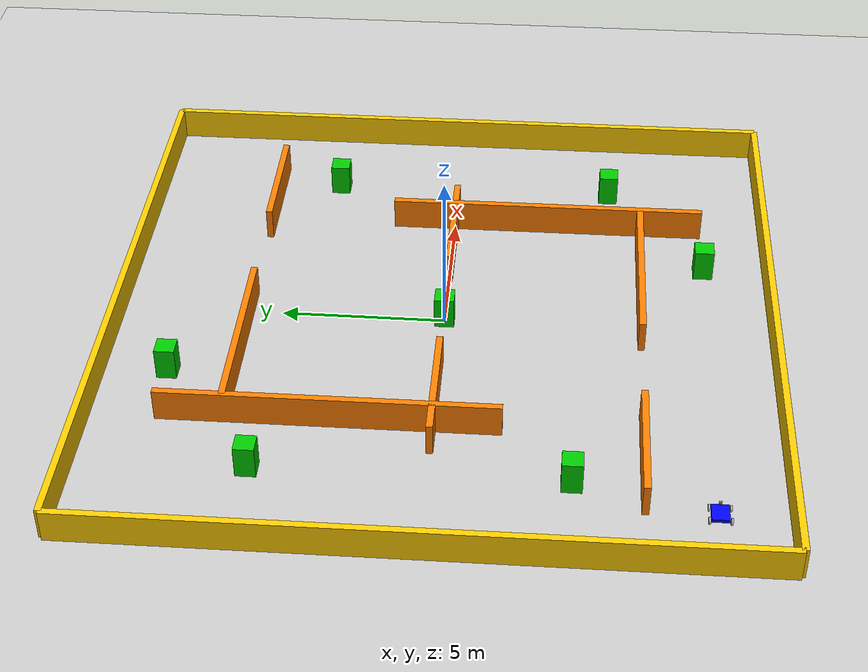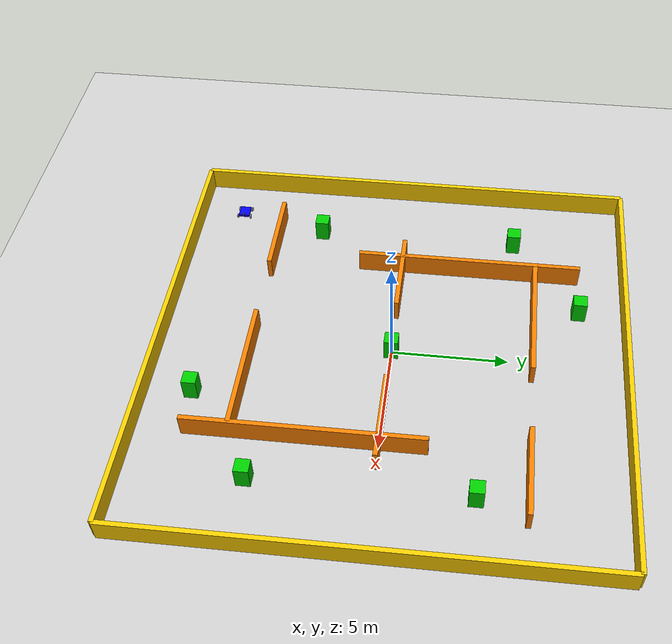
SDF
<?xml version="1.0" ?>
<sdf version="1.7">
    <world name="test_world">

        <include>
            <uri>https://fuel.gazebosim.org/1.0/OpenRobotics/models/Sun</uri>
        </include>

        <include>
            <uri>https://fuel.gazebosim.org/1.0/OpenRobotics/models/Ground Plane</uri>
        </include>

        <include>
            <uri>/workspace/gazebo_projects/models/simple_bot</uri>
            <pose>-8 -8 0.05 0 0 0</pose>
        </include>

        <physics name="1ms" type="ignored">
            <max_step_size>0.001</max_step_size>
            <real_time_factor>1.0</real_time_factor>
        </physics>

        <!-- OUTER WALLS 20x20 (yellow)  -->
        <model name="wall_north">
            <static>true</static>
            <pose>10 0 0.5 0 0 0</pose>
            <link name="link">
                <collision name="collision">
                    <geometry>
                        <box>
                            <size>0.2 20 1</size>
                        </box>
                    </geometry>
                </collision>
                <visual name="visual">
                    <geometry>
                        <box>
                            <size>0.2 20 1</size>
                        </box>
                    </geometry>
                    <material>
                        <ambient>1 0.8 0 1</ambient>
                        <diffuse>1 0.8 0 1</diffuse>
                    </material>
                </visual>
            </link>
        </model>

        <model name="wall_south">
            <static>true</static>
            <pose>-10 0 0.5 0 0 0</pose>
            <link name="link">
                <collision name="collision">
                    <geometry>
                        <box>
                            <size>0.2 20 1</size>
                        </box>
                    </geometry>
                </collision>
                <visual name="visual">
                    <geometry>
                        <box>
                            <size>0.2 20 1</size>
                        </box>
                    </geometry>
                    <material>
                        <ambient>1 0.8 0 1</ambient>
                        <diffuse>1 0.8 0 1</diffuse>
                    </material>
                </visual>
            </link>
        </model>

        <model name="wall_east">
            <static>true</static>
            <pose>0 10 0.5 0 0 0</pose>
            <link name="link">
                <collision name="collision">
                    <geometry>
                        <box>
                            <size>20 0.2 1</size>
                        </box>
                    </geometry>
                </collision>
                <visual name="visual">
                    <geometry>
                        <box>
                            <size>20 0.2 1</size>
                        </box>
                    </geometry>
                    <material>
                        <ambient>1 0.8 0 1</ambient>
                        <diffuse>1 0.8 0 1</diffuse>
                    </material>
                </visual>
            </link>
        </model>

        <model name="wall_west">
            <static>true</static>
            <pose>0 -10 0.5 0 0 0</pose>
            <link name="link">
                <collision name="collision">
                    <geometry>
                        <box>
                            <size>20 0.2 1</size>
                        </box>
                    </geometry>
                </collision>
                <visual name="visual">
                    <geometry>
                        <box>
                            <size>20 0.2 1</size>
                        </box>
                    </geometry>
                    <material>
                        <ambient>1 0.8 0 1</ambient>
                        <diffuse>1 0.8 0 1</diffuse>
                    </material>
                </visual>
            </link>
        </model>

        <!-- MAZE INNER WALLS (orange) -->

        <!-- Left vertical wall — gap at bottom -->
        <model name="maze_wall_1">
            <static>true</static>
            <pose>-5 3 0.5 0 0 0</pose>
            <link name="link">
                <collision name="collision">
                    <geometry>
                        <box>
                            <size>0.2 10 1</size>
                        </box>
                    </geometry>
                </collision>
                <visual name="visual">
                    <geometry>
                        <box>
                            <size>0.2 10 1</size>
                        </box>
                    </geometry>
                    <material>
                        <ambient>1 0.5 0 1</ambient>
                        <diffuse>1 0.5 0 1</diffuse>
                    </material>
                </visual>
            </link>
        </model>

        <!-- Right vertical wall — gap at top -->
        <model name="maze_wall_2">
            <static>true</static>
            <pose>5 -3 0.5 0 0 0</pose>
            <link name="link">
                <collision name="collision">
                    <geometry>
                        <box>
                            <size>0.2 10 1</size>
                        </box>
                    </geometry>
                </collision>
                <visual name="visual">
                    <geometry>
                        <box>
                            <size>0.2 10 1</size>
                        </box>
                    </geometry>
                    <material>
                        <ambient>1 0.5 0 1</ambient>
                        <diffuse>1 0.5 0 1</diffuse>
                    </material>
                </visual>
            </link>
        </model>

        <!-- Top horizontal wall — gap on right side -->
        <model name="maze_wall_3a">
            <static>true</static>
            <pose>-2 6 0.5 0 0 0</pose>
            <link name="link">
                <collision name="collision">
                    <geometry>
                        <box>
                            <size>6 0.2 1</size>
                        </box>
                    </geometry>
                </collision>
                <visual name="visual">
                    <geometry>
                        <box>
                            <size>6 0.2 1</size>
                        </box>
                    </geometry>
                    <material>
                        <ambient>1 0.5 0 1</ambient>
                        <diffuse>1 0.5 0 1</diffuse>
                    </material>
                </visual>
            </link>
        </model>

        <model name="maze_wall_3b">
            <static>true</static>
            <pose>6 6 0.5 0 0 0</pose>
            <link name="link">
                <collision name="collision">
                    <geometry>
                        <box>
                            <size>4 0.2 1</size>
                        </box>
                    </geometry>
                </collision>
                <visual name="visual">
                    <geometry>
                        <box>
                            <size>4 0.2 1</size>
                        </box>
                    </geometry>
                    <material>
                        <ambient>1 0.5 0 1</ambient>
                        <diffuse>1 0.5 0 1</diffuse>
                    </material>
                </visual>
            </link>
        </model>

        <!-- Bottom horizontal wall — gap on left side -->
        <model name="maze_wall_4a">
            <static>true</static>
            <pose>2 -6 0.5 0 0 0</pose>
            <link name="link">
                <collision name="collision">
                    <geometry>
                        <box>
                            <size>6 0.2 1</size>
                        </box>
                    </geometry>
                </collision>
                <visual name="visual">
                    <geometry>
                        <box>
                            <size>6 0.2 1</size>
                        </box>
                    </geometry>
                    <material>
                        <ambient>1 0.5 0 1</ambient>
                        <diffuse>1 0.5 0 1</diffuse>
                    </material>
                </visual>
            </link>
        </model>

        <model name="maze_wall_4b">
            <static>true</static>
            <pose>-6 -6 0.5 0 0 0</pose>
            <link name="link">
                <collision name="collision">
                    <geometry>
                        <box>
                            <size>4 0.2 1</size>
                        </box>
                    </geometry>
                </collision>
                <visual name="visual">
                    <geometry>
                        <box>
                            <size>4 0.2 1</size>
                        </box>
                    </geometry>
                    <material>
                        <ambient>1 0.5 0 1</ambient>
                        <diffuse>1 0.5 0 1</diffuse>
                    </material>
                </visual>
            </link>
        </model>

        <!-- Middle cross wall — horizontal, gap in centre -->
        <model name="maze_wall_5a">
            <static>true</static>
            <pose>-4 0 0.5 0 0 0</pose>
            <link name="link">
                <collision name="collision">
                    <geometry>
                        <box>
                            <size>4 0.2 1</size>
                        </box>
                    </geometry>
                </collision>
                <visual name="visual">
                    <geometry>
                        <box>
                            <size>4 0.2 1</size>
                        </box>
                    </geometry>
                    <material>
                        <ambient>1 0.5 0 1</ambient>
                        <diffuse>1 0.5 0 1</diffuse>
                    </material>
                </visual>
            </link>
        </model>

        <model name="maze_wall_5b">
            <static>true</static>
            <pose>4 0 0.5 0 0 0</pose>
            <link name="link">
                <collision name="collision">
                    <geometry>
                        <box>
                            <size>4 0.2 1</size>
                        </box>
                    </geometry>
                </collision>
                <visual name="visual">
                    <geometry>
                        <box>
                            <size>4 0.2 1</size>
                        </box>
                    </geometry>
                    <material>
                        <ambient>1 0.5 0 1</ambient>
                        <diffuse>1 0.5 0 1</diffuse>
                    </material>
                </visual>
            </link>
        </model>

        <!-- PILLARS (green) -->
        <model name="pillar_1">
            <static>true</static>
            <pose>0 0 0.5 0 0 0</pose>
            <link name="link">
                <collision name="collision">
                    <geometry>
                        <box>
                            <size>0.6 0.6 1</size>
                        </box>
                    </geometry>
                </collision>
                <visual name="visual">
                    <geometry>
                        <box>
                            <size>0.6 0.6 1</size>
                        </box>
                    </geometry>
                    <material>
                        <ambient>0 0.8 0 1</ambient>
                        <diffuse>0 0.8 0 1</diffuse>
                    </material>
                </visual>
            </link>
        </model>

        <model name="pillar_2">
            <static>true</static>
            <pose>7 4 0.5 0 0 0</pose>
            <link name="link">
                <collision name="collision">
                    <geometry>
                        <box>
                            <size>0.6 0.6 1</size>
                        </box>
                    </geometry>
                </collision>
                <visual name="visual">
                    <geometry>
                        <box>
                            <size>0.6 0.6 1</size>
                        </box>
                    </geometry>
                    <material>
                        <ambient>0 0.8 0 1</ambient>
                        <diffuse>0 0.8 0 1</diffuse>
                    </material>
                </visual>
            </link>
        </model>

        <model name="pillar_3">
            <static>true</static>
            <pose>-7 -4 0.5 0 0 0</pose>
            <link name="link">
                <collision name="collision">
                    <geometry>
                        <box>
                            <size>0.6 0.6 1</size>
                        </box>
                    </geometry>
                </collision>
                <visual name="visual">
                    <geometry>
                        <box>
                            <size>0.6 0.6 1</size>
                        </box>
                    </geometry>
                    <material>
                        <ambient>0 0.8 0 1</ambient>
                        <diffuse>0 0.8 0 1</diffuse>
                    </material>
                </visual>
            </link>
        </model>

        <model name="pillar_4">
            <static>true</static>
            <pose>-7 5 0.5 0 0 0</pose>
            <link name="link">
                <collision name="collision">
                    <geometry>
                        <box>
                            <size>0.6 0.6 1</size>
                        </box>
                    </geometry>
                </collision>
                <visual name="visual">
                    <geometry>
                        <box>
                            <size>0.6 0.6 1</size>
                        </box>
                    </geometry>
                    <material>
                        <ambient>0 0.8 0 1</ambient>
                        <diffuse>0 0.8 0 1</diffuse>
                    </material>
                </visual>
            </link>
        </model>

        <model name="pillar_5">
            <static>true</static>
            <pose>7 -5 0.5 0 0 0</pose>
            <link name="link">
                <collision name="collision">
                    <geometry>
                        <box>
                            <size>0.6 0.6 1</size>
                        </box>
                    </geometry>
                </collision>
                <visual name="visual">
                    <geometry>
                        <box>
                            <size>0.6 0.6 1</size>
                        </box>
                    </geometry>
                    <material>
                        <ambient>0 0.8 0 1</ambient>
                        <diffuse>0 0.8 0 1</diffuse>
                    </material>
                </visual>
            </link>
        </model>

        <model name="pillar_6">
            <static>true</static>
            <pose>3 -8 0.5 0 0 0</pose>
            <link name="link">
                <collision name="collision">
                    <geometry>
                        <box>
                            <size>0.6 0.6 1</size>
                        </box>
                    </geometry>
                </collision>
                <visual name="visual">
                    <geometry>
                        <box>
                            <size>0.6 0.6 1</size>
                        </box>
                    </geometry>
                    <material>
                        <ambient>0 0.8 0 1</ambient>
                        <diffuse>0 0.8 0 1</diffuse>
                    </material>
                </visual>
            </link>
        </model>

        <model name="pillar_7">
            <static>true</static>
            <pose>-3 8 0.5 0 0 0</pose>
            <link name="link">
                <collision name="collision">
                    <geometry>
                        <box>
                            <size>0.6 0.6 1</size>
                        </box>
                    </geometry>
                </collision>
                <visual name="visual">
                    <geometry>
                        <box>
                            <size>0.6 0.6 1</size>
                        </box>
                    </geometry>
                    <material>
                        <ambient>0 0.8 0 1</ambient>
                        <diffuse>0 0.8 0 1</diffuse>
                    </material>
                </visual>
            </link>
        </model>

    </world>
</sdf>

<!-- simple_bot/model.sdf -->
<sdf version="1.7">
    <model name="square_bot">
        <pose>0 0 0 0 0 0</pose>

        <link name="chassis">
            <pose relative_to='__model__'>0 0 0.15 0 0 0</pose>
            <inertial>
                <mass>1.5</mass>
                <inertia>
                    <ixx>0.1</ixx>
                    <iyy>0.1</iyy>
                    <izz>0.1</izz>
                </inertia>
            </inertial>
            <visual name="visual">
                <geometry>
                    <box>
                        <size>0.6 0.5 0.1</size>
                    </box>
                </geometry>
                <material>
                    <ambient>0 0 1 1</ambient>
                    <diffuse>0 0 1 1</diffuse>
                </material>
            </visual>
            <collision name="collision">
                <geometry>
                    <box>
                        <size>0.6 0.5 0.1</size>
                    </box>
                </geometry>
            </collision>
        </link>

        <link name="front_lidar_link">
            <pose relative_to="chassis">0.3 0 0.08 0 0 0</pose>
            <inertial>
                <mass>0.1</mass>
                <inertia>
                    <ixx>0.001</ixx>
                    <iyy>0.001</iyy>
                    <izz>0.001</izz>
                </inertia>
            </inertial>
            <visual name="visual">
                <geometry>
                    <cylinder>
                        <radius>0.04</radius>
                        <length>0.06</length>
                    </cylinder>
                </geometry>
                <material>
                    <ambient>0.2 0.2 0.2 1</ambient>
                    <diffuse>0.2 0.2 0.2 1</diffuse>
                </material>
            </visual>
            <collision name="collision">
                <geometry>
                    <cylinder>
                        <radius>0.04</radius>
                        <length>0.06</length>
                    </cylinder>
                </geometry>
            </collision>
            <sensor name="front_lidar" type="gpu_lidar">
                <pose>0 0 0 0 0 0</pose>
                <topic>front_lidar/scan</topic>
                <update_rate>10</update_rate>
                <lidar>
                    <scan>
                        <horizontal>
                            <samples>360</samples>
                            <resolution>1</resolution>
                            <min_angle>-1.5707963</min_angle>
                            <max_angle>1.5707963</max_angle>
                        </horizontal>
                    </scan>
                    <range>
                        <min>0.1</min>
                        <max>10.0</max>
                        <resolution>0.01</resolution>
                    </range>
                </lidar>
                <visualize>true</visualize>
            </sensor>
        </link>

        <joint name="front_lidar_joint" type="fixed">
            <parent>chassis</parent>
            <child>front_lidar_link</child>
        </joint>

        <link name="camera_pan_link">
            <pose relative_to="chassis">0.28 0 0.1 0 0 0</pose>
            <inertial>
                <mass>0.1</mass>
                <inertia>
                    <ixx>0.0001</ixx>
                    <iyy>0.0001</iyy>
                    <izz>0.0001</izz>
                </inertia>
            </inertial>
            <visual name="visual">
                <geometry>
                    <cylinder>
                        <radius>0.03</radius>
                        <length>0.04</length>
                    </cylinder>
                </geometry>
            </visual>
            <self_collide>false</self_collide>
        </link>

        <joint name="camera_pan_joint" type="revolute">
            <parent>chassis</parent>
            <child>camera_pan_link</child>
            <axis>
                <xyz>0 0 1</xyz>
                <limit>
                    <lower>-1.5708</lower>
                    <upper>1.5708</upper>
                </limit>
                <dynamics>
                    <damping>0.1</damping>
                </dynamics>
            </axis>
        </joint>

        <link name="camera_tilt_link">
            <pose relative_to="camera_pan_link">0 0 0.05 0 0 0</pose>
            <inertial>
                <mass>0.1</mass>
                <inertia>
                    <ixx>0.0001</ixx>
                    <iyy>0.0001</iyy>
                    <izz>0.0001</izz>
                </inertia>
            </inertial>
            <visual name="visual">
                <geometry>
                    <box>
                        <size>0.05 0.08 0.05</size>
                    </box>
                </geometry>
            </visual>
            <self_collide>false</self_collide>

            <sensor name="camera" type="camera">
                <pose>0.025 0 0 0 0 0</pose>
                <topic>camera/image</topic>
                <update_rate>30</update_rate>
                <camera>
                    <horizontal_fov>1.047</horizontal_fov>
                    <image>
                        <width>640</width>
                        <height>480</height>
                        <format>R8G8B8</format>
                    </image>
                    <clip>
                        <near>0.1</near>
                        <far>100</far>
                    </clip>
                </camera>
                <visualize>true</visualize>
            </sensor>
        </link>

        <joint name="camera_tilt_joint" type="revolute">
            <parent>camera_pan_link</parent>
            <child>camera_tilt_link</child>
            <axis>
                <xyz>0 1 0</xyz>
                <limit>
                    <lower>-0.5236</lower>
                    <upper>0.5236</upper>
                </limit>
                <dynamics>
                    <damping>0.1</damping>
                </dynamics>
            </axis>
        </joint>

        <link name="front_left_wheel">
            <pose relative_to="chassis">0.25 0.3 -0.05 0 0 0</pose>
            <inertial>
                <mass>0.3</mass>
                <inertia>
                    <ixx>0.01</ixx>
                    <iyy>0.01</iyy>
                    <izz>0.02</izz>
                </inertia>
            </inertial>
            <visual name="visual">
                <pose>0 0 0 1.5707963 0 0</pose>
                <geometry>
                    <cylinder>
                        <radius>0.1</radius>
                        <length>0.05</length>
                    </cylinder>
                </geometry>
            </visual>
            <collision name="collision">
                <pose>0 0 0 1.5707963 0 0</pose>
                <geometry>
                    <cylinder>
                        <radius>0.1</radius>
                        <length>0.05</length>
                    </cylinder>
                </geometry>
            </collision>
        </link>

        <link name="front_right_wheel">
            <pose relative_to="chassis">0.25 -0.3 -0.05 0 0 0</pose>
            <inertial>
                <mass>0.3</mass>
                <inertia>
                    <ixx>0.01</ixx>
                    <iyy>0.01</iyy>
                    <izz>0.02</izz>
                </inertia>
            </inertial>
            <visual name="visual">
                <pose>0 0 0 1.5707963 0 0</pose>
                <geometry>
                    <cylinder>
                        <radius>0.1</radius>
                        <length>0.05</length>
                    </cylinder>
                </geometry>
            </visual>
            <collision name="collision">
                <pose>0 0 0 1.5707963 0 0</pose>
                <geometry>
                    <cylinder>
                        <radius>0.1</radius>
                        <length>0.05</length>
                    </cylinder>
                </geometry>
            </collision>
        </link>

        <link name="rear_left_wheel">
            <pose relative_to="chassis">-0.25 0.3 -0.05 0 0 0</pose>
            <collision name="collision">
                <pose>0 0 0 1.5707963 0 0</pose>
                <geometry>
                    <cylinder>
                        <radius>0.1</radius>
                        <length>0.05</length>
                    </cylinder>
                </geometry>
                <surface>
                    <friction>
                        <ode>
                            <mu>0</mu>
                            <mu2>0</mu2>
                        </ode>
                    </friction>
                </surface>
            </collision>
            <visual name="visual">
                <pose>0 0 0 1.5707963 0 0</pose>
                <geometry>
                    <cylinder>
                        <radius>0.1</radius>
                        <length>0.05</length>
                    </cylinder>
                </geometry>
            </visual>
        </link>

        <link name="rear_right_wheel">
            <pose relative_to="chassis">-0.25 -0.3 -0.05 0 0 0</pose>
            <collision name="collision">
                <pose>0 0 0 1.5707963 0 0</pose>
                <geometry>
                    <cylinder>
                        <radius>0.1</radius>
                        <length>0.05</length>
                    </cylinder>
                </geometry>
                <surface>
                    <friction>
                        <ode>
                            <mu>0</mu>
                            <mu2>0</mu2>
                        </ode>
                    </friction>
                </surface>
            </collision>
            <visual name="visual">
                <pose>0 0 0 1.5707963 0 0</pose>
                <geometry>
                    <cylinder>
                        <radius>0.1</radius>
                        <length>0.05</length>
                    </cylinder>
                </geometry>
            </visual>
        </link>

        <joint name="front_left_joint" type="revolute">
            <parent>chassis</parent>
            <child>front_left_wheel</child>
            <axis>
                <xyz expressed_in="__model__">0 1 0</xyz>
            </axis>
        </joint>

        <joint name="front_right_joint" type="revolute">
            <parent>chassis</parent>
            <child>front_right_wheel</child>
            <axis>
                <xyz expressed_in="__model__">0 1 0</xyz>
            </axis>
        </joint>

        <joint name="rear_left_joint" type="revolute">
            <parent>chassis</parent>
            <child>rear_left_wheel</child>
            <axis>
                <xyz expressed_in="__model__">0 1 0</xyz>
            </axis>
        </joint>

        <joint name="rear_right_joint" type="revolute">
            <parent>chassis</parent>
            <child>rear_right_wheel</child>
            <axis>
                <xyz expressed_in="__model__">0 1 0</xyz>
            </axis>
        </joint>

        <plugin filename="gz-sim-diff-drive-system" name="gz::sim::systems::DiffDrive">
            <left_joint>front_left_joint</left_joint>
            <right_joint>front_right_joint</right_joint>
            <wheel_separation>0.6</wheel_separation>
            <wheel_radius>0.1</wheel_radius>
            <topic>cmd_vel</topic>
        </plugin>

        <plugin filename="gz-sim-joint-position-controller-system" name="gz::sim::systems::JointPositionController">
            <joint_name>camera_pan_joint</joint_name>
            <topic>camera_pan</topic>
        </plugin>

        <plugin filename="gz-sim-joint-position-controller-system" name="gz::sim::systems::JointPositionController">
            <joint_name>camera_tilt_joint</joint_name>
            <topic>camera_tilt</topic>
        </plugin>

        <plugin filename="gz-sim-sensors-system" name="gz::sim::systems::Sensors">
            <render_engine>ogre2</render_engine>
        </plugin>
    </model>
</sdf>
